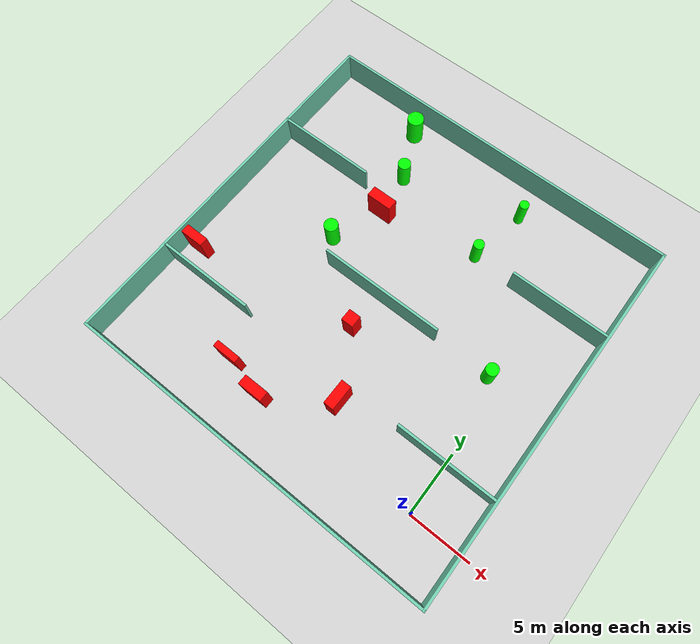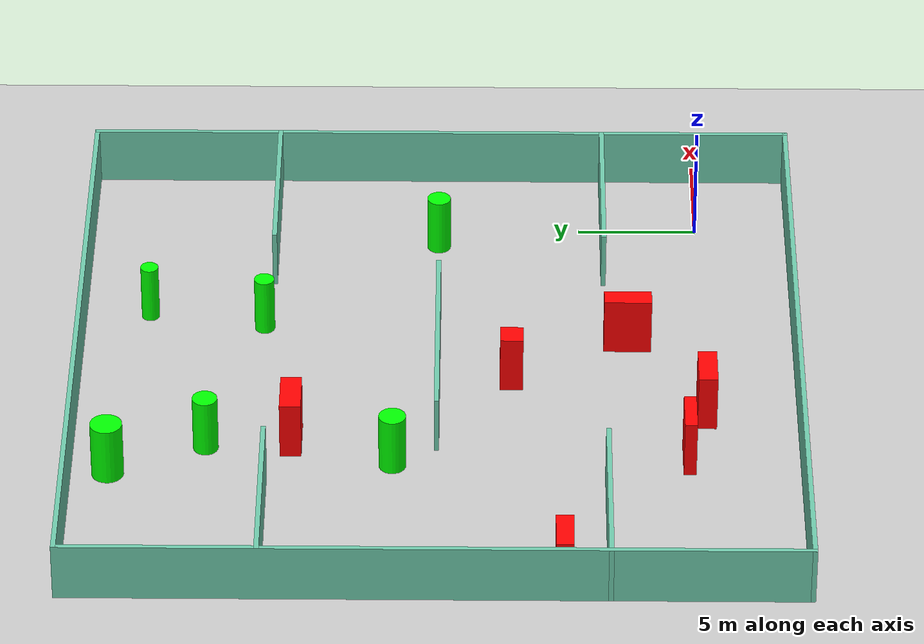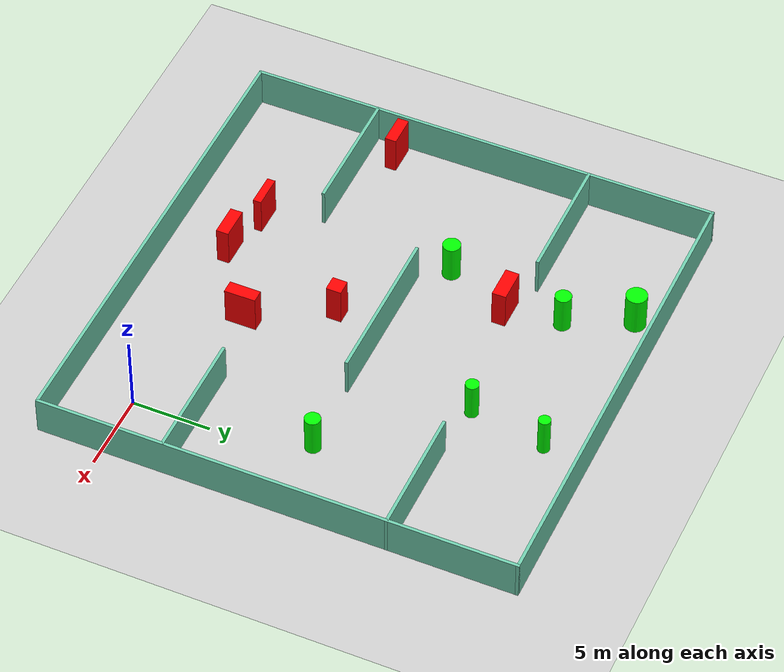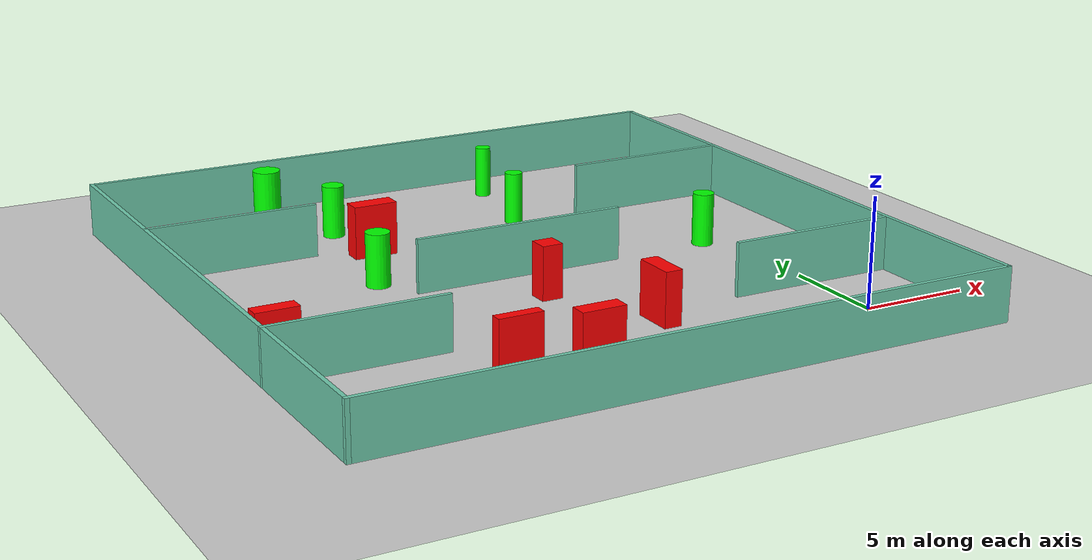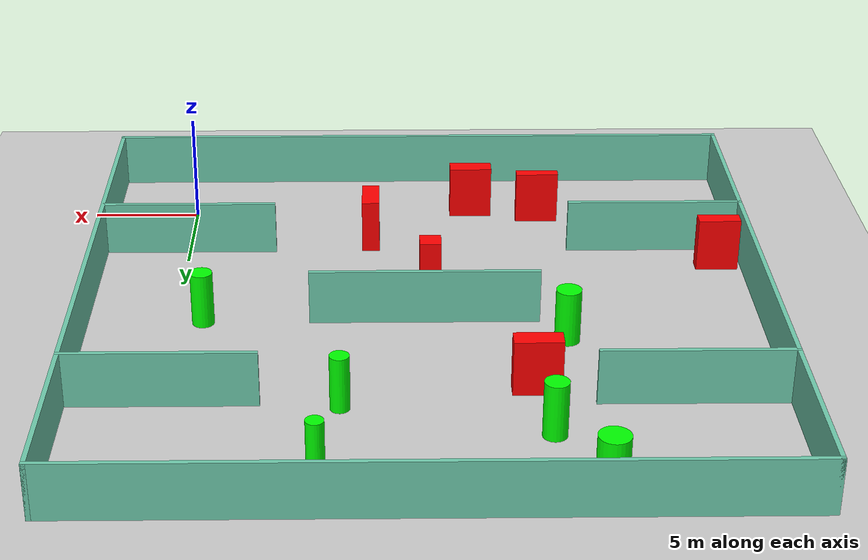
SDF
<sdf version="1.7">
 <world name="default">
  <light name="sun" type="directional">
   <pose>0 0 10 0 -0 0</pose>
   <diffuse>0.8 0.8 0.8 1</diffuse>
   <specular>0.2 0.2 0.2 1</specular>
   <attenuation>
    <range>1000</range>
    <constant>0.9</constant>
    <linear>0.01</linear>
    <quadratic>0.001</quadratic>
   </attenuation>
   <direction>-0.5 0.1 -0.9</direction>
   <spot><inner_angle>0</inner_angle><outer_angle>0</outer_angle><falloff>0</falloff></spot>
  </light>
  <model name="ground_plane">
   <static>1</static>
   <link name="link">
    <collision name="collision">
     <geometry><plane><normal>0 0 1</normal><size>100 100</size></plane></geometry>
     <surface>
      <contact><collide_bitmask>65535</collide_bitmask></contact>
      <friction><ode><mu>100</mu><mu2>50</mu2></ode></friction>
     </surface>
    </collision>
    <visual name="visual">
     <cast_shadows>0</cast_shadows>
     <geometry><plane><normal>0 0 1</normal><size>100 100</size></plane></geometry>
     <material>
      <script><uri>file://media/materials/scripts/gazebo.material</uri><name>Gazebo/Grey</name></script>
     </material>
    </visual>
   </link>
  </model>
  <gravity>0 0 -9.8</gravity>
  <magnetic_field>6e-06 2.3e-05 -4.2e-05</magnetic_field>
  <atmosphere type="adiabatic"/>
  <physics type="ode">
   <max_step_size>0.001</max_step_size>
   <real_time_factor>1</real_time_factor>
   <real_time_update_rate>1000</real_time_update_rate>
  </physics>
  <scene><ambient>0.4 0.4 0.4 1</ambient><background>0.7 0.7 0.7 1</background><shadows>1</shadows></scene>
  <spherical_coordinates>
   <surface_model>EARTH_WGS84</surface_model>
   <latitude_deg>0</latitude_deg>
   <longitude_deg>0</longitude_deg>
   <elevation>0</elevation>
   <heading_deg>0</heading_deg>
  </spherical_coordinates>
  <model name="my_base_walls">
   <link name="Wall_10">
    <collision name="Wall_10_Collision">
     <geometry><box><size>8.2 0.2 2.5</size></box></geometry>
     <pose>0 0 1.25 0 -0 0</pose>
    </collision>
    <visual name="Wall_10_Visual">
     <pose>0 0 1.25 0 -0 0</pose>
     <geometry><box><size>8.2 0.2 2.5</size></box></geometry>
     <material>
      <script><uri>file://media/materials/scripts/gazebo.material</uri><name>Gazebo/Grey</name></script>
      <ambient>0.435294 0.796078 0.67451 1</ambient>
     </material>
     <meta><layer>0</layer></meta>
    </visual>
    <pose>-11 -7 0 0 -0 0</pose>
   </link>
   <link name="Wall_12">
    <collision name="Wall_12_Collision">
     <geometry><box><size>8.2 0.2 2.5</size></box></geometry>
     <pose>0 0 1.25 0 -0 0</pose>
    </collision>
    <visual name="Wall_12_Visual">
     <pose>0 0 1.25 0 -0 0</pose>
     <geometry><box><size>8.2 0.2 2.5</size></box></geometry>
     <material>
      <script><uri>file://media/materials/scripts/gazebo.material</uri><name>Gazebo/Grey</name></script>
      <ambient>0.435294 0.796078 0.67451 1</ambient>
     </material>
     <meta><layer>0</layer></meta>
    </visual>
    <pose>-11 7 0 0 -0 0</pose>
   </link>
   <link name="Wall_14">
    <collision name="Wall_14_Collision">
     <geometry><box><size>8.2 0.2 2.5</size></box></geometry>
     <pose>0 0 1.25 0 -0 0</pose>
    </collision>
    <visual name="Wall_14_Visual">
     <pose>0 0 1.25 0 -0 0</pose>
     <geometry><box><size>8.2 0.2 2.5</size></box></geometry>
     <material>
      <script><uri>file://media/materials/scripts/gazebo.material</uri><name>Gazebo/Grey</name></script>
      <ambient>0.435294 0.796078 0.67451 1</ambient>
     </material>
     <meta><layer>0</layer></meta>
    </visual>
    <pose>11 7 0 0 -0 3.14159</pose>
   </link>
   <link name="Wall_16">
    <collision name="Wall_16_Collision">
     <geometry><box><size>10.2 0.2 2.5</size></box></geometry>
     <pose>0 0 1.25 0 -0 0</pose>
    </collision>
    <visual name="Wall_16_Visual">
     <pose>0 0 1.25 0 -0 0</pose>
     <geometry><box><size>10.2 0.2 2.5</size></box></geometry>
     <material>
      <script><uri>file://media/materials/scripts/gazebo.material</uri><name>Gazebo/Grey</name></script>
      <ambient>0.435294 0.796078 0.67451 1</ambient>
     </material>
     <meta><layer>0</layer></meta>
    </visual>
    <pose>0 0 0 0 -0 3.14159</pose>
   </link>
   <link name="Wall_2">
    <collision name="Wall_2_Collision">
     <geometry><box><size>30.2 0.2 2.5</size></box></geometry>
     <pose>0 0 1.25 0 -0 0</pose>
    </collision>
    <visual name="Wall_2_Visual">
     <pose>0 0 1.25 0 -0 0</pose>
     <geometry><box><size>30.2 0.2 2.5</size></box></geometry>
     <material>
      <script><uri>file://media/materials/scripts/gazebo.material</uri><name>Gazebo/Grey</name></script>
      <ambient>0.435294 0.796078 0.67451 1</ambient>
     </material>
     <meta><layer>0</layer></meta>
    </visual>
    <pose>0 -15 0 0 -0 3.14159</pose>
   </link>
   <link name="Wall_3">
    <collision name="Wall_3_Collision">
     <geometry><box><size>30.2 0.2 2.5</size></box></geometry>
     <pose>0 0 1.25 0 -0 0</pose>
    </collision>
    <visual name="Wall_3_Visual">
     <pose>0 0 1.25 0 -0 0</pose>
     <geometry><box><size>30.2 0.2 2.5</size></box></geometry>
     <material>
      <script><uri>file://media/materials/scripts/gazebo.material</uri><name>Gazebo/Grey</name></script>
      <ambient>0.435294 0.796078 0.67451 1</ambient>
     </material>
     <meta><layer>0</layer></meta>
    </visual>
    <pose>-15 0 0 0 -0 1.5708</pose>
   </link>
   <link name="Wall_4">
    <collision name="Wall_4_Collision">
     <geometry><box><size>30.2 0.2 2.5</size></box></geometry>
     <pose>0 0 1.25 0 -0 0</pose>
    </collision>
    <visual name="Wall_4_Visual">
     <pose>0 0 1.25 0 -0 0</pose>
     <geometry><box><size>30.2 0.2 2.5</size></box></geometry>
     <material>
      <script><uri>file://media/materials/scripts/gazebo.material</uri><name>Gazebo/Grey</name></script>
      <ambient>0.435294 0.796078 0.67451 1</ambient>
     </material>
     <meta><layer>0</layer></meta>
    </visual>
    <pose>0 15 0 0 -0 0</pose>
   </link>
   <link name="Wall_6">
    <collision name="Wall_6_Collision">
     <geometry><box><size>30.2 0.2 2.5</size></box></geometry>
     <pose>0 0 1.25 0 -0 0</pose>
    </collision>
    <visual name="Wall_6_Visual">
     <pose>0 0 1.25 0 -0 0</pose>
     <geometry><box><size>30.2 0.2 2.5</size></box></geometry>
     <material>
      <script><uri>file://media/materials/scripts/gazebo.material</uri><name>Gazebo/Grey</name></script>
      <ambient>0.435294 0.796078 0.67451 1</ambient>
     </material>
     <meta><layer>0</layer></meta>
    </visual>
    <pose>15 0 0 0 -0 1.5708</pose>
   </link>
   <link name="Wall_8">
    <collision name="Wall_8_Collision">
     <geometry><box><size>8.2 0.2 2.5</size></box></geometry>
     <pose>0 0 1.25 0 -0 0</pose>
    </collision>
    <visual name="Wall_8_Visual">
     <pose>0 0 1.25 0 -0 0</pose>
     <geometry><box><size>8.2 0.2 2.5</size></box></geometry>
     <material>
      <script><uri>file://media/materials/scripts/gazebo.material</uri><name>Gazebo/Grey</name></script>
      <ambient>0.435294 0.796078 0.67451 1</ambient>
     </material>
     <meta><layer>0</layer></meta>
    </visual>
    <pose>11 -7 0 0 -0 3.14159</pose>
   </link>
   <static>1</static>
   <pose>-11 11 0 0 -0 0</pose>
  </model>
  <model name="cylinder1">
   <static>1</static>
   <link name="link">
    <inertial>
     <mass>1</mass>
     <inertia><ixx>0.5</ixx><ixy>0</ixy><ixz>0</ixz><iyy>0.5</iyy><iyz>0</iyz><izz>1</izz></inertia>
    </inertial>
    <collision name="collision">
     <geometry><cylinder><radius>0.49728238379416423</radius><length>2.5</length></cylinder></geometry>
    </collision>
    <visual name="visual">
     <geometry><cylinder><radius>0.49728238379416423</radius><length>2.5</length></cylinder></geometry>
     <material>
      <ambient>0 1 0 1</ambient>
      <diffuse>0 1 0 1</diffuse>
      <specular>0.1 0.1 0.1 1</specular>
      <emissive>0 0 0 0</emissive>
     </material>
    </visual>
   </link>
   <pose>-1.2034475180119202 11.027231078503526 1.25 0 0 0</pose>
  </model>
  <model name="cylinder2">
   <static>1</static>
   <link name="link">
    <inertial>
     <mass>1</mass>
     <inertia><ixx>0.5</ixx><ixy>0</ixy><ixz>0</ixz><iyy>0.5</iyy><iyz>0</iyz><izz>1</izz></inertia>
    </inertial>
    <collision name="collision">
     <geometry><cylinder><radius>0.4217388397982011</radius><length>2.5</length></cylinder></geometry>
    </collision>
    <visual name="visual">
     <geometry><cylinder><radius>0.4217388397982011</radius><length>2.5</length></cylinder></geometry>
     <material>
      <ambient>0 1 0 1</ambient>
      <diffuse>0 1 0 1</diffuse>
      <specular>0.1 0.1 0.1 1</specular>
      <emissive>0 0 0 0</emissive>
     </material>
    </visual>
   </link>
   <pose>-7.387269616426009 18.323166674777447 1.25 0 0 0</pose>
  </model>
  <model name="cylinder3">
   <static>1</static>
   <link name="link">
    <inertial>
     <mass>1</mass>
     <inertia><ixx>0.5</ixx><ixy>0</ixy><ixz>0</ixz><iyy>0.5</iyy><iyz>0</iyz><izz>1</izz></inertia>
    </inertial>
    <collision name="collision">
     <geometry><cylinder><radius>0.5608309057648722</radius><length>2.5</length></cylinder></geometry>
    </collision>
    <visual name="visual">
     <geometry><cylinder><radius>0.5608309057648722</radius><length>2.5</length></cylinder></geometry>
     <material>
      <ambient>0 1 0 1</ambient>
      <diffuse>0 1 0 1</diffuse>
      <specular>0.1 0.1 0.1 1</specular>
      <emissive>0 0 0 0</emissive>
     </material>
    </visual>
   </link>
   <pose>-17.157114794181453 12.78508261094197 1.25 0 0 0</pose>
  </model>
  <model name="cylinder4">
   <static>1</static>
   <link name="link">
    <inertial>
     <mass>1</mass>
     <inertia><ixx>0.5</ixx><ixy>0</ixy><ixz>0</ixz><iyy>0.5</iyy><iyz>0</iyz><izz>1</izz></inertia>
    </inertial>
    <collision name="collision">
     <geometry><cylinder><radius>0.37563652581037177</radius><length>2.5</length></cylinder></geometry>
    </collision>
    <visual name="visual">
     <geometry><cylinder><radius>0.37563652581037177</radius><length>2.5</length></cylinder></geometry>
     <material>
      <ambient>0 1 0 1</ambient>
      <diffuse>0 1 0 1</diffuse>
      <specular>0.1 0.1 0.1 1</specular>
      <emissive>0 0 0 0</emissive>
     </material>
    </visual>
   </link>
   <pose>-6.545655766090224 23.19552894895769 1.25 0 0 0</pose>
  </model>
  <model name="cylinder5">
   <static>1</static>
   <link name="link">
    <inertial>
     <mass>1</mass>
     <inertia><ixx>0.5</ixx><ixy>0</ixy><ixz>0</ixz><iyy>0.5</iyy><iyz>0</iyz><izz>1</izz></inertia>
    </inertial>
    <collision name="collision">
     <geometry><cylinder><radius>0.518736653074167</radius><length>2.5</length></cylinder></geometry>
    </collision>
    <visual name="visual">
     <geometry><cylinder><radius>0.518736653074167</radius><length>2.5</length></cylinder></geometry>
     <material>
      <ambient>0 1 0 1</ambient>
      <diffuse>0 1 0 1</diffuse>
      <specular>0.1 0.1 0.1 1</specular>
      <emissive>0 0 0 0</emissive>
     </material>
    </visual>
   </link>
   <pose>-15.990602428377368 20.4589721385189 1.25 0 0 0</pose>
  </model>
  <model name="cylinder6">
   <static>1</static>
   <link name="link">
    <inertial>
     <mass>1</mass>
     <inertia><ixx>0.5</ixx><ixy>0</ixy><ixz>0</ixz><iyy>0.5</iyy><iyz>0</iyz><izz>1</izz></inertia>
    </inertial>
    <collision name="collision">
     <geometry><cylinder><radius>0.6622584282741076</radius><length>2.5</length></cylinder></geometry>
    </collision>
    <visual name="visual">
     <geometry><cylinder><radius>0.6622584282741076</radius><length>2.5</length></cylinder></geometry>
     <material>
      <ambient>0 1 0 1</ambient>
      <diffuse>0 1 0 1</diffuse>
      <specular>0.1 0.1 0.1 1</specular>
      <emissive>0 0 0 0</emissive>
     </material>
    </visual>
   </link>
   <pose>-17.8125102199825 24.384242273651964 1.25 0 0 0</pose>
  </model>
  <model name="box1">
   <static>1</static>
   <link name="link">
    <inertial>
     <mass>1</mass>
     <inertia><ixx>0.083</ixx><ixy>0</ixy><ixz>0</ixz><iyy>0.083</iyy><iyz>0</iyz><izz>0.083</izz></inertia>
    </inertial>
    <collision name="collision">
     <geometry><box><size>0.8167070504211328 1.98954517375353 2.5</size></box></geometry>
    </collision>
    <visual name="visual">
     <geometry><box><size>0.8167070504211328 1.98954517375353 2.5</size></box></geometry>
     <material>
      <ambient>1 0 0 1</ambient>
      <diffuse>1 0 0 1</diffuse>
      <specular>0.1 0.1 0.1 1</specular>
      <emissive>0 0 0 0</emissive>
     </material>
    </visual>
    <sensor name="my_contact" type="contact">
     <contact><collision>box_collision</collision><topic>__default_topic__</topic></contact>
    </sensor>
   </link>
   <pose>-8.589485027522146 3.0532792812127143 1.25 0 0 0</pose>
  </model>
  <model name="box2">
   <static>1</static>
   <link name="link">
    <inertial>
     <mass>1</mass>
     <inertia><ixx>0.083</ixx><ixy>0</ixy><ixz>0</ixz><iyy>0.083</iyy><iyz>0</iyz><izz>0.083</izz></inertia>
    </inertial>
    <collision name="collision">
     <geometry><box><size>2.083703051207504 0.8775365665406594 2.5</size></box></geometry>
    </collision>
    <visual name="visual">
     <geometry><box><size>2.083703051207504 0.8775365665406594 2.5</size></box></geometry>
     <material>
      <ambient>1 0 0 1</ambient>
      <diffuse>1 0 0 1</diffuse>
      <specular>0.1 0.1 0.1 1</specular>
      <emissive>0 0 0 0</emissive>
     </material>
    </visual>
    <sensor name="my_contact" type="contact">
     <contact><collision>box_collision</collision><topic>__default_topic__</topic></contact>
    </sensor>
   </link>
   <pose>-15.528622170478688 16.96668083659858 1.25 0 0 0</pose>
  </model>
  <model name="box3">
   <static>1</static>
   <link name="link">
    <inertial>
     <mass>1</mass>
     <inertia><ixx>0.083</ixx><ixy>0</ixy><ixz>0</ixz><iyy>0.083</iyy><iyz>0</iyz><izz>0.083</izz></inertia>
    </inertial>
    <collision name="collision">
     <geometry><box><size>2.0173204218078897 0.512937954144499 2.5</size></box></geometry>
    </collision>
    <visual name="visual">
     <geometry><box><size>2.0173204218078897 0.512937954144499 2.5</size></box></geometry>
     <material>
      <ambient>1 0 0 1</ambient>
      <diffuse>1 0 0 1</diffuse>
      <specular>0.1 0.1 0.1 1</specular>
      <emissive>0 0 0 0</emissive>
     </material>
    </visual>
    <sensor name="my_contact" type="contact">
     <contact><collision>box_collision</collision><topic>__default_topic__</topic></contact>
    </sensor>
   </link>
   <pose>-16.6849877840665 0.642790068852459 1.25 0 0 0</pose>
  </model>
  <model name="box4">
   <static>1</static>
   <link name="link">
    <inertial>
     <mass>1</mass>
     <inertia><ixx>0.083</ixx><ixy>0</ixy><ixz>0</ixz><iyy>0.083</iyy><iyz>0</iyz><izz>0.083</izz></inertia>
    </inertial>
    <collision name="collision">
     <geometry><box><size>0.9810488526392833 0.9569274105234019 2.5</size></box></geometry>
    </collision>
    <visual name="visual">
     <geometry><box><size>0.9810488526392833 0.9569274105234019 2.5</size></box></geometry>
     <material>
      <ambient>1 0 0 1</ambient>
      <diffuse>1 0 0 1</diffuse>
      <specular>0.1 0.1 0.1 1</specular>
      <emissive>0 0 0 0</emissive>
     </material>
    </visual>
    <sensor name="my_contact" type="contact">
     <contact><collision>box_collision</collision><topic>__default_topic__</topic></contact>
    </sensor>
   </link>
   <pose>-11.314309783821 7.921873049960741 1.25 0 0 0</pose>
  </model>
  <model name="box5">
   <static>1</static>
   <link name="link">
    <inertial>
     <mass>1</mass>
     <inertia><ixx>0.083</ixx><ixy>0</ixy><ixz>0</ixz><iyy>0.083</iyy><iyz>0</iyz><izz>0.083</izz></inertia>
    </inertial>
    <collision name="collision">
     <geometry><box><size>1.9396200034904765 0.722559048336511 2.5</size></box></geometry>
    </collision>
    <visual name="visual">
     <geometry><box><size>1.9396200034904765 0.722559048336511 2.5</size></box></geometry>
     <material>
      <ambient>1 0 0 1</ambient>
      <diffuse>1 0 0 1</diffuse>
      <specular>0.1 0.1 0.1 1</specular>
      <emissive>0 0 0 0</emissive>
     </material>
    </visual>
    <sensor name="my_contact" type="contact">
     <contact><collision>box_collision</collision><topic>__default_topic__</topic></contact>
    </sensor>
   </link>
   <pose>-24.746194476179216 5.823241637814714 1.25 0 0 0</pose>
  </model>
  <model name="box6">
   <static>1</static>
   <link name="link">
    <inertial>
     <mass>1</mass>
     <inertia><ixx>0.083</ixx><ixy>0</ixy><ixz>0</ixz><iyy>0.083</iyy><iyz>0</iyz><izz>0.083</izz></inertia>
    </inertial>
    <collision name="collision">
     <geometry><box><size>2.0086035734224144 0.7896310461664688 2.5</size></box></geometry>
    </collision>
    <visual name="visual">
     <geometry><box><size>2.0086035734224144 0.7896310461664688 2.5</size></box></geometry>
     <material>
      <ambient>1 0 0 1</ambient>
      <diffuse>1 0 0 1</diffuse>
      <specular>0.1 0.1 0.1 1</specular>
      <emissive>0 0 0 0</emissive>
     </material>
    </visual>
    <sensor name="my_contact" type="contact">
     <contact><collision>box_collision</collision><topic>__default_topic__</topic></contact>
    </sensor>
   </link>
   <pose>-13.474242699007249 -0.14700671977190805 1.25 0 0 0</pose>
  </model>
 </world>
</sdf>
